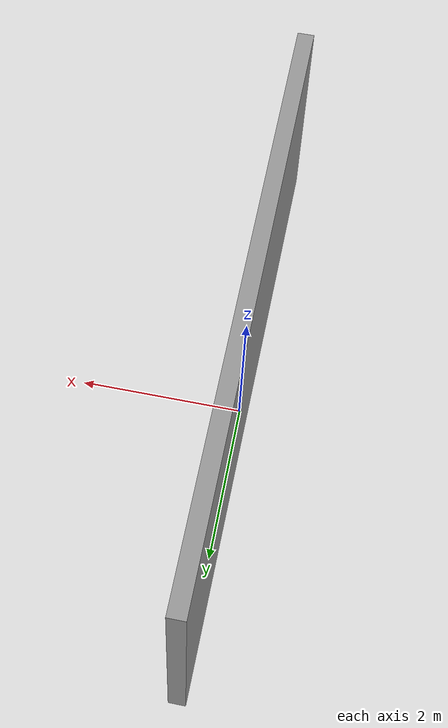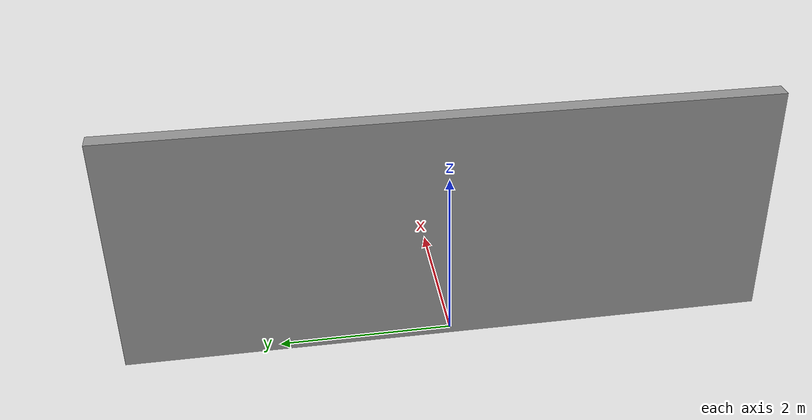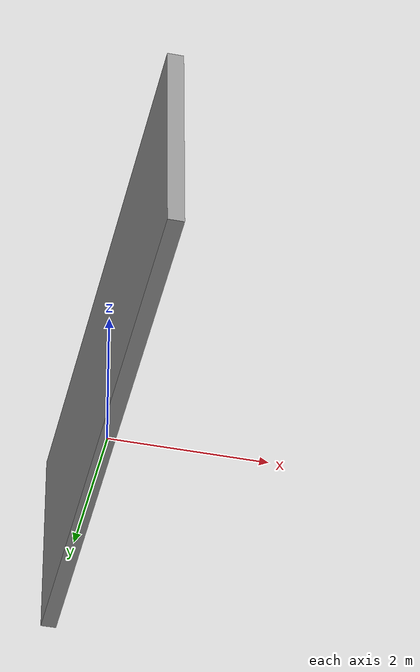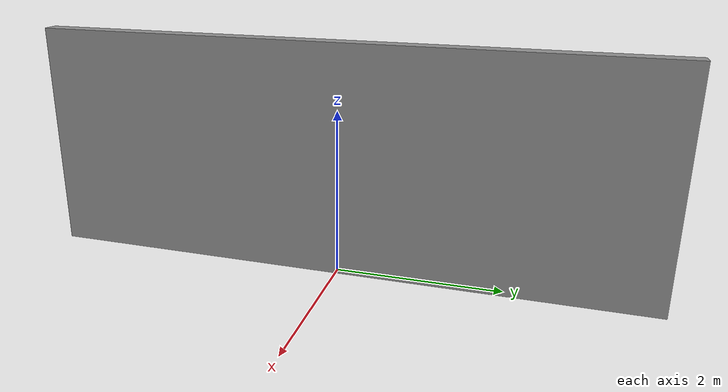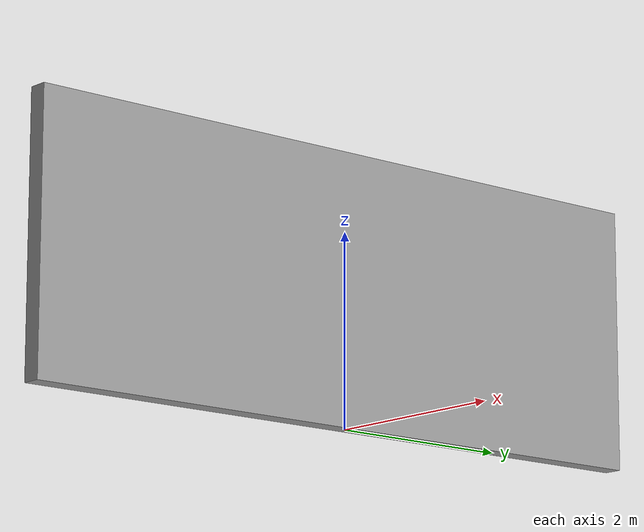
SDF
<?xml version='1.0'?>
<sdf version='1.6'>
  <model name='test2.world'>
    <model name='grey_wall'>
      <static>1</static>
      <link name='link'>
        <pose frame=''>0 0 1.4 0 -0 0</pose>
        <collision name='collision'>
          <geometry>
            <box>
              <size>7.5 0.2 2.8</size>
            </box>
          </geometry>
        </collision>
        <visual name='visual'>
          <cast_shadows>0</cast_shadows>
          <geometry>
            <box>
              <size>7.5 0.2 2.8</size>
            </box>
          </geometry>
          <material>
            <script>
              <uri>model://grey_wall/materials/scripts</uri>
              <uri>model://grey_wall/materials/textures</uri>
              <name>vrc/grey_wall</name>
            </script>
          </material>
        </visual>
      </link>
      <pose frame=''>1e-06 -2e-06 0 0 -0 1.56614</pose>
    </model>
    <static>0</static>
    <allow_auto_disable>1</allow_auto_disable>
  </model>
</sdf>
